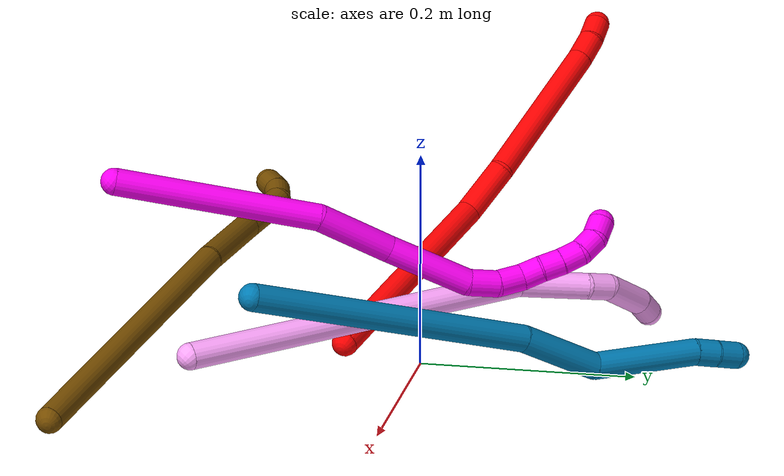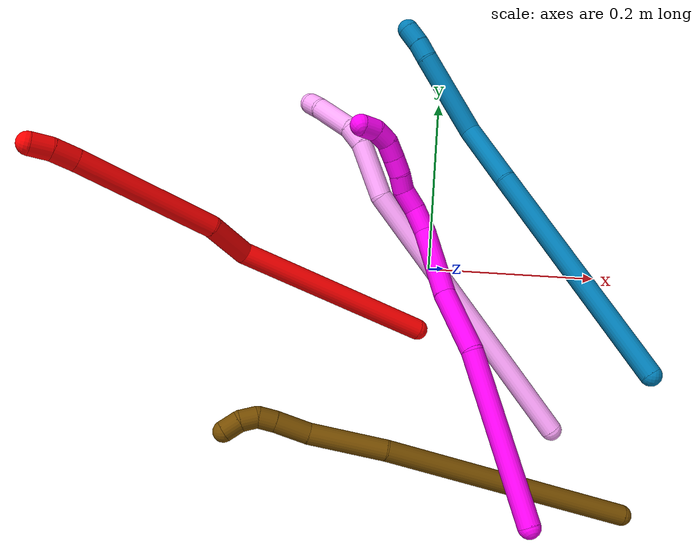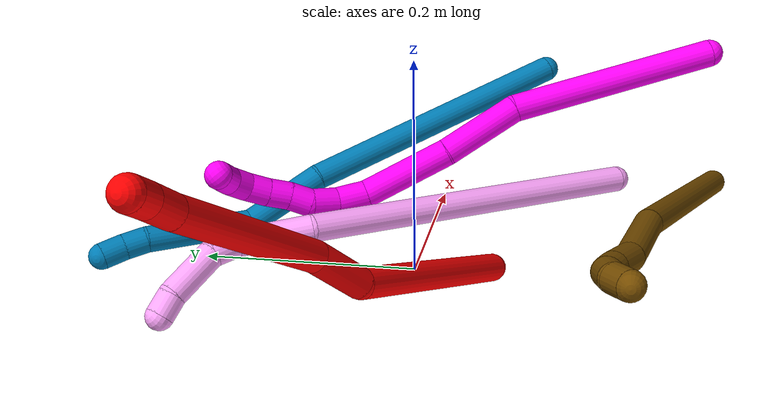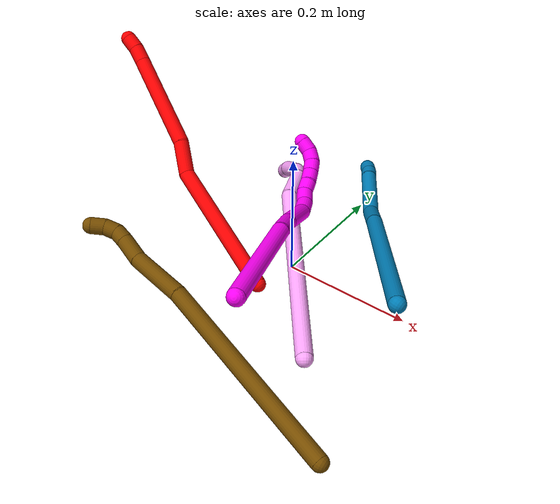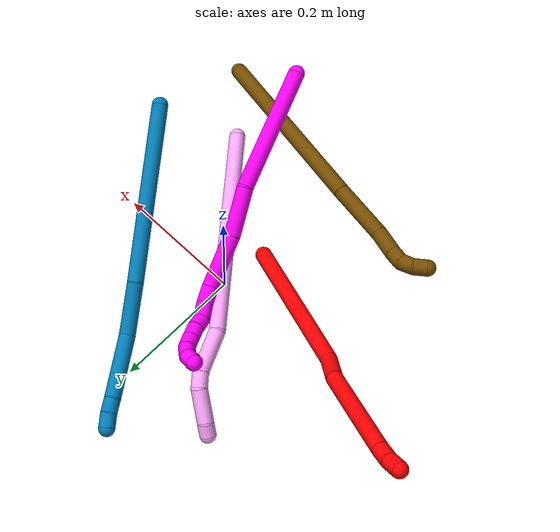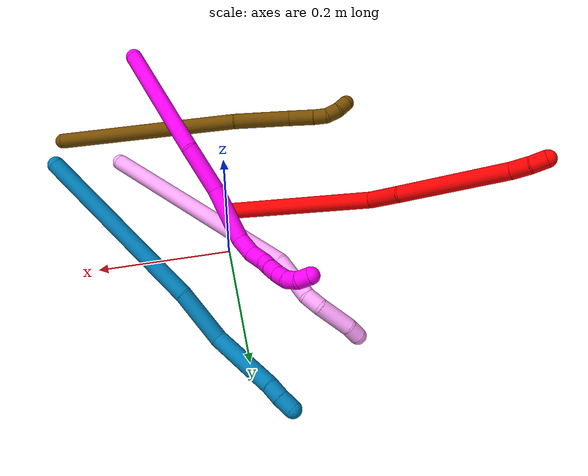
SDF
<sdf version="1.7">
 <world name="default">
  <model name="2">
   <static>0</static>
   <link name="2">
    <collision name="collision-cylinder-e_1_1_4">
     <pose>-0.018141 -0.002774 0.114519 0.024216 -0.157057 -0.001906</pose>
     <geometry><cylinder><radius>0.0125</radius><length>0.23196</length></cylinder></geometry>
     <surface>
      <friction><ode><mu>1.16</mu><mu2>1.16</mu2><slip1>0</slip1><slip2>0</slip2></ode></friction>
      <contact><ode><kp>1e+06</kp><kd>1</kd><max_vel>0</max_vel><min_depth>0.001</min_depth></ode></contact>
     </surface>
    </collision>
    <visual name="visual-cylinder-e_1_1_4">
     <pose>-0.018141 -0.002774 0.114519 0.024216 -0.157057 -0.001906</pose>
     <geometry><cylinder><radius>0.0125</radius><length>0.23196</length></cylinder></geometry>
     <material><ambient>1 0 0 1</ambient></material>
    </visual>
    <collision name="collision-cylinder-e_2_4_5">
     <pose>-0.04564 0.004698 0.252582 -0.410443 -0.349523 0.073471</pose>
     <geometry><cylinder><radius>0.0125</radius><length>0.054657</length></cylinder></geometry>
     <surface>
      <friction><ode><mu>1.16</mu><mu2>1.16</mu2><slip1>0</slip1><slip2>0</slip2></ode></friction>
      <contact><ode><kp>1e+06</kp><kd>1</kd><max_vel>0</max_vel><min_depth>0.001</min_depth></ode></contact>
     </surface>
    </collision>
    <visual name="visual-cylinder-e_2_4_5">
     <pose>-0.04564 0.004698 0.252582 -0.410443 -0.349523 0.073471</pose>
     <geometry><cylinder><radius>0.0125</radius><length>0.054657</length></cylinder></geometry>
     <material><ambient>1 0 0 1</ambient></material>
    </visual>
    <collision name="collision-cylinder-e_3_5_6">
     <pose>-0.069323 0.030337 0.355141 -0.192414 -0.176091 0.017037</pose>
     <geometry><cylinder><radius>0.0125</radius><length>0.16353</length></cylinder></geometry>
     <surface>
      <friction><ode><mu>1.16</mu><mu2>1.16</mu2><slip1>0</slip1><slip2>0</slip2></ode></friction>
      <contact><ode><kp>1e+06</kp><kd>1</kd><max_vel>0</max_vel><min_depth>0.001</min_depth></ode></contact>
     </surface>
    </collision>
    <visual name="visual-cylinder-e_3_5_6">
     <pose>-0.069323 0.030337 0.355141 -0.192414 -0.176091 0.017037</pose>
     <geometry><cylinder><radius>0.0125</radius><length>0.16353</length></cylinder></geometry>
     <material><ambient>1 0 0 1</ambient></material>
    </visual>
    <collision name="collision-cylinder-e_4_6_7">
     <pose>-0.085354 0.049131 0.447128 -0.256303 -0.126675 0.016345</pose>
     <geometry><cylinder><radius>0.0125</radius><length>0.027038</length></cylinder></geometry>
     <surface>
      <friction><ode><mu>1.16</mu><mu2>1.16</mu2><slip1>0</slip1><slip2>0</slip2></ode></friction>
      <contact><ode><kp>1e+06</kp><kd>1</kd><max_vel>0</max_vel><min_depth>0.001</min_depth></ode></contact>
     </surface>
    </collision>
    <visual name="visual-cylinder-e_4_6_7">
     <pose>-0.085354 0.049131 0.447128 -0.256303 -0.126675 0.016345</pose>
     <geometry><cylinder><radius>0.0125</radius><length>0.027038</length></cylinder></geometry>
     <material><ambient>1 0 0 1</ambient></material>
    </visual>
    <collision name="collision-cylinder-e_5_7_2">
     <pose>-0.086562 0.054585 0.47131 -0.181308 0.043835 -0.003985</pose>
     <geometry><cylinder><radius>0.0125</radius><length>0.022815</length></cylinder></geometry>
     <surface>
      <friction><ode><mu>1.16</mu><mu2>1.16</mu2><slip1>0</slip1><slip2>0</slip2></ode></friction>
      <contact><ode><kp>1e+06</kp><kd>1</kd><max_vel>0</max_vel><min_depth>0.001</min_depth></ode></contact>
     </surface>
    </collision>
    <visual name="visual-cylinder-e_5_7_2">
     <pose>-0.086562 0.054585 0.47131 -0.181308 0.043835 -0.003985</pose>
     <geometry><cylinder><radius>0.0125</radius><length>0.022815</length></cylinder></geometry>
     <material><ambient>1 0 0 1</ambient></material>
    </visual>
    <collision name="collision-sphere-2">
     <pose>-0.086062 0.05664 0.48252 0 -0 0</pose>
     <geometry><sphere><radius>0.0125</radius></sphere></geometry>
     <surface>
      <friction><ode><mu>1.16</mu><mu2>1.16</mu2><slip1>0</slip1><slip2>0</slip2></ode></friction>
      <contact><ode><kp>1e+06</kp><kd>1</kd><max_vel>0</max_vel><min_depth>0.001</min_depth></ode></contact>
     </surface>
    </collision>
    <visual name="visual-sphere-2">
     <pose>-0.086062 0.05664 0.48252 0 -0 0</pose>
     <geometry><sphere><radius>0.0125</radius></sphere></geometry>
     <material><ambient>1 0 0 1</ambient></material>
    </visual>
    <collision name="collision-sphere-7">
     <pose>-0.087062 0.05253 0.4601 0 -0 0</pose>
     <geometry><sphere><radius>0.0125</radius></sphere></geometry>
     <surface>
      <friction><ode><mu>1.16</mu><mu2>1.16</mu2><slip1>0</slip1><slip2>0</slip2></ode></friction>
      <contact><ode><kp>1e+06</kp><kd>1</kd><max_vel>0</max_vel><min_depth>0.001</min_depth></ode></contact>
     </surface>
    </collision>
    <visual name="visual-sphere-7">
     <pose>-0.087062 0.05253 0.4601 0 -0 0</pose>
     <geometry><sphere><radius>0.0125</radius></sphere></geometry>
     <material><ambient>1 0 0 1</ambient></material>
    </visual>
    <collision name="collision-sphere-6">
     <pose>-0.083646 0.045731 0.434156 0 -0 0</pose>
     <geometry><sphere><radius>0.0125</radius></sphere></geometry>
     <surface>
      <friction><ode><mu>1.16</mu><mu2>1.16</mu2><slip1>0</slip1><slip2>0</slip2></ode></friction>
      <contact><ode><kp>1e+06</kp><kd>1</kd><max_vel>0</max_vel><min_depth>0.001</min_depth></ode></contact>
     </surface>
    </collision>
    <visual name="visual-sphere-6">
     <pose>-0.083646 0.045731 0.434156 0 -0 0</pose>
     <geometry><sphere><radius>0.0125</radius></sphere></geometry>
     <material><ambient>1 0 0 1</ambient></material>
    </visual>
    <collision name="collision-sphere-5">
     <pose>-0.054999 0.014943 0.276126 0 -0 0</pose>
     <geometry><sphere><radius>0.0125</radius></sphere></geometry>
     <surface>
      <friction><ode><mu>1.16</mu><mu2>1.16</mu2><slip1>0</slip1><slip2>0</slip2></ode></friction>
      <contact><ode><kp>1e+06</kp><kd>1</kd><max_vel>0</max_vel><min_depth>0.001</min_depth></ode></contact>
     </surface>
    </collision>
    <visual name="visual-sphere-5">
     <pose>-0.054999 0.014943 0.276126 0 -0 0</pose>
     <geometry><sphere><radius>0.0125</radius></sphere></geometry>
     <material><ambient>1 0 0 1</ambient></material>
    </visual>
    <collision name="collision-sphere-1">
     <geometry><sphere><radius>0.0125</radius></sphere></geometry>
     <surface>
      <friction><ode><mu>1.16</mu><mu2>1.16</mu2><slip1>0</slip1><slip2>0</slip2></ode></friction>
      <contact><ode><kp>1e+06</kp><kd>1</kd><max_vel>0</max_vel><min_depth>0.001</min_depth></ode></contact>
     </surface>
    </collision>
    <visual name="visual-sphere-1">
     <geometry><sphere><radius>0.0125</radius></sphere></geometry>
     <material><ambient>1 0 0 1</ambient></material>
    </visual>
    <collision name="collision-sphere-4">
     <pose>-0.036281 -0.005547 0.229038 0 -0 0</pose>
     <geometry><sphere><radius>0.0125</radius></sphere></geometry>
     <surface>
      <friction><ode><mu>1.16</mu><mu2>1.16</mu2><slip1>0</slip1><slip2>0</slip2></ode></friction>
      <contact><ode><kp>1e+06</kp><kd>1</kd><max_vel>0</max_vel><min_depth>0.001</min_depth></ode></contact>
     </surface>
    </collision>
    <visual name="visual-sphere-4">
     <pose>-0.036281 -0.005547 0.229038 0 -0 0</pose>
     <geometry><sphere><radius>0.0125</radius></sphere></geometry>
     <material><ambient>1 0 0 1</ambient></material>
    </visual>
    <inertial>
     <pose>-0.044643 0.014296 0.242575 0 -0 0</pose>
     <mass>0.5</mass>
     <inertia>
      <ixx>0.001419</ixx>
      <ixy>0</ixy>
      <ixz>0</ixz>
      <iyy>0.001442</iyy>
      <iyz>0</iyz>
      <izz>0.000221</izz>
     </inertia>
    </inertial>
   </link>
   <pose>-0.010815 -0.073451 0.011546 1.2241 -0.027903 -1.76151</pose>
  </model>
  <model name="4">
   <static>0</static>
   <link name="4">
    <collision name="collision-cylinder-e_1_1_4">
     <pose>-0.051968 0.084675 0.137216 -0.55289 -0.311793 0.089123</pose>
     <geometry><cylinder><radius>0.0125</radius><length>0.338815</length></cylinder></geometry>
     <surface>
      <friction><ode><mu>1.16</mu><mu2>1.16</mu2><slip1>0</slip1><slip2>0</slip2></ode></friction>
      <contact><ode><kp>1e+06</kp><kd>1</kd><max_vel>0</max_vel><min_depth>0.001</min_depth></ode></contact>
     </surface>
    </collision>
    <visual name="visual-cylinder-e_1_1_4">
     <pose>-0.051968 0.084675 0.137216 -0.55289 -0.311793 0.089123</pose>
     <geometry><cylinder><radius>0.0125</radius><length>0.338815</length></cylinder></geometry>
     <material><ambient>1 0.65098 0.996078 1</ambient></material>
    </visual>
    <collision name="collision-cylinder-e_2_4_5">
     <pose>-0.107349 0.193216 0.297172 -0.809585 -0.103134 0.04422</pose>
     <geometry><cylinder><radius>0.0125</radius><length>0.066282</length></cylinder></geometry>
     <surface>
      <friction><ode><mu>1.16</mu><mu2>1.16</mu2><slip1>0</slip1><slip2>0</slip2></ode></friction>
      <contact><ode><kp>1e+06</kp><kd>1</kd><max_vel>0</max_vel><min_depth>0.001</min_depth></ode></contact>
     </surface>
    </collision>
    <visual name="visual-cylinder-e_2_4_5">
     <pose>-0.107349 0.193216 0.297172 -0.809585 -0.103134 0.04422</pose>
     <geometry><cylinder><radius>0.0125</radius><length>0.066282</length></cylinder></geometry>
     <material><ambient>1 0.65098 0.996078 1</ambient></material>
    </visual>
    <collision name="collision-cylinder-e_3_5_6">
     <pose>-0.115547 0.224957 0.327732 -0.7888 -0.407164 0.171424</pose>
     <geometry><cylinder><radius>0.0125</radius><length>0.024173</length></cylinder></geometry>
     <surface>
      <friction><ode><mu>1.16</mu><mu2>1.16</mu2><slip1>0</slip1><slip2>0</slip2></ode></friction>
      <contact><ode><kp>1e+06</kp><kd>1</kd><max_vel>0</max_vel><min_depth>0.001</min_depth></ode></contact>
     </surface>
    </collision>
    <visual name="visual-cylinder-e_3_5_6">
     <pose>-0.115547 0.224957 0.327732 -0.7888 -0.407164 0.171424</pose>
     <geometry><cylinder><radius>0.0125</radius><length>0.024173</length></cylinder></geometry>
     <material><ambient>1 0.65098 0.996078 1</ambient></material>
    </visual>
    <collision name="collision-cylinder-e_4_6_7">
     <pose>-0.137091 0.249468 0.344217 -1.09067 -0.729157 0.455067</pose>
     <geometry><cylinder><radius>0.0125</radius><length>0.050304</length></cylinder></geometry>
     <surface>
      <friction><ode><mu>1.16</mu><mu2>1.16</mu2><slip1>0</slip1><slip2>0</slip2></ode></friction>
      <contact><ode><kp>1e+06</kp><kd>1</kd><max_vel>0</max_vel><min_depth>0.001</min_depth></ode></contact>
     </surface>
    </collision>
    <visual name="visual-cylinder-e_4_6_7">
     <pose>-0.137091 0.249468 0.344217 -1.09067 -0.729157 0.455067</pose>
     <geometry><cylinder><radius>0.0125</radius><length>0.050304</length></cylinder></geometry>
     <material><ambient>1 0.65098 0.996078 1</ambient></material>
    </visual>
    <collision name="collision-cylinder-e_5_7_2">
     <pose>-0.160689 0.27364 0.353725 -1.45922 -0.733976 0.662174</pose>
     <geometry><cylinder><radius>0.0125</radius><length>0.020426</length></cylinder></geometry>
     <surface>
      <friction><ode><mu>1.16</mu><mu2>1.16</mu2><slip1>0</slip1><slip2>0</slip2></ode></friction>
      <contact><ode><kp>1e+06</kp><kd>1</kd><max_vel>0</max_vel><min_depth>0.001</min_depth></ode></contact>
     </surface>
    </collision>
    <visual name="visual-cylinder-e_5_7_2">
     <pose>-0.160689 0.27364 0.353725 -1.45922 -0.733976 0.662174</pose>
     <geometry><cylinder><radius>0.0125</radius><length>0.020426</length></cylinder></geometry>
     <material><ambient>1 0.65098 0.996078 1</ambient></material>
    </visual>
    <collision name="collision-sphere-2">
     <pose>-0.16753 0.281176 0.354569 0 -0 0</pose>
     <geometry><sphere><radius>0.0125</radius></sphere></geometry>
     <surface>
      <friction><ode><mu>1.16</mu><mu2>1.16</mu2><slip1>0</slip1><slip2>0</slip2></ode></friction>
      <contact><ode><kp>1e+06</kp><kd>1</kd><max_vel>0</max_vel><min_depth>0.001</min_depth></ode></contact>
     </surface>
    </collision>
    <visual name="visual-sphere-2">
     <pose>-0.16753 0.281176 0.354569 0 -0 0</pose>
     <geometry><sphere><radius>0.0125</radius></sphere></geometry>
     <material><ambient>1 0.65098 0.996078 1</ambient></material>
    </visual>
    <collision name="collision-sphere-7">
     <pose>-0.153848 0.266104 0.35288 0 -0 0</pose>
     <geometry><sphere><radius>0.0125</radius></sphere></geometry>
     <surface>
      <friction><ode><mu>1.16</mu><mu2>1.16</mu2><slip1>0</slip1><slip2>0</slip2></ode></friction>
      <contact><ode><kp>1e+06</kp><kd>1</kd><max_vel>0</max_vel><min_depth>0.001</min_depth></ode></contact>
     </surface>
    </collision>
    <visual name="visual-sphere-7">
     <pose>-0.153848 0.266104 0.35288 0 -0 0</pose>
     <geometry><sphere><radius>0.0125</radius></sphere></geometry>
     <material><ambient>1 0.65098 0.996078 1</ambient></material>
    </visual>
    <collision name="collision-sphere-6">
     <pose>-0.120333 0.232832 0.335553 0 -0 0</pose>
     <geometry><sphere><radius>0.0125</radius></sphere></geometry>
     <surface>
      <friction><ode><mu>1.16</mu><mu2>1.16</mu2><slip1>0</slip1><slip2>0</slip2></ode></friction>
      <contact><ode><kp>1e+06</kp><kd>1</kd><max_vel>0</max_vel><min_depth>0.001</min_depth></ode></contact>
     </surface>
    </collision>
    <visual name="visual-sphere-6">
     <pose>-0.120333 0.232832 0.335553 0 -0 0</pose>
     <geometry><sphere><radius>0.0125</radius></sphere></geometry>
     <material><ambient>1 0.65098 0.996078 1</ambient></material>
    </visual>
    <collision name="collision-sphere-5">
     <pose>-0.110761 0.217083 0.319911 0 -0 0</pose>
     <geometry><sphere><radius>0.0125</radius></sphere></geometry>
     <surface>
      <friction><ode><mu>1.16</mu><mu2>1.16</mu2><slip1>0</slip1><slip2>0</slip2></ode></friction>
      <contact><ode><kp>1e+06</kp><kd>1</kd><max_vel>0</max_vel><min_depth>0.001</min_depth></ode></contact>
     </surface>
    </collision>
    <visual name="visual-sphere-5">
     <pose>-0.110761 0.217083 0.319911 0 -0 0</pose>
     <geometry><sphere><radius>0.0125</radius></sphere></geometry>
     <material><ambient>1 0.65098 0.996078 1</ambient></material>
    </visual>
    <collision name="collision-sphere-1">
     <geometry><sphere><radius>0.0125</radius></sphere></geometry>
     <surface>
      <friction><ode><mu>1.16</mu><mu2>1.16</mu2><slip1>0</slip1><slip2>0</slip2></ode></friction>
      <contact><ode><kp>1e+06</kp><kd>1</kd><max_vel>0</max_vel><min_depth>0.001</min_depth></ode></contact>
     </surface>
    </collision>
    <visual name="visual-sphere-1">
     <geometry><sphere><radius>0.0125</radius></sphere></geometry>
     <material><ambient>1 0.65098 0.996078 1</ambient></material>
    </visual>
    <collision name="collision-sphere-4">
     <pose>-0.103937 0.16935 0.274433 0 -0 0</pose>
     <geometry><sphere><radius>0.0125</radius></sphere></geometry>
     <surface>
      <friction><ode><mu>1.16</mu><mu2>1.16</mu2><slip1>0</slip1><slip2>0</slip2></ode></friction>
      <contact><ode><kp>1e+06</kp><kd>1</kd><max_vel>0</max_vel><min_depth>0.001</min_depth></ode></contact>
     </surface>
    </collision>
    <visual name="visual-sphere-4">
     <pose>-0.103937 0.16935 0.274433 0 -0 0</pose>
     <geometry><sphere><radius>0.0125</radius></sphere></geometry>
     <material><ambient>1 0.65098 0.996078 1</ambient></material>
    </visual>
    <inertial>
     <pose>-0.075389 0.130145 0.197302 0 -0 0</pose>
     <mass>0.5</mass>
     <inertia>
      <ixx>0.003392</ixx>
      <ixy>0</ixy>
      <ixz>0</ixz>
      <iyy>0.003139</iyy>
      <iyz>0</iyz>
      <izz>-0.000618</izz>
     </inertia>
    </inertial>
   </link>
   <pose>0.150867 -0.180179 0.045322 -0.835767 -0.36922 0.335295</pose>
  </model>
  <model name="9">
   <static>0</static>
   <link name="9">
    <collision name="collision-cylinder-e_1_1_4">
     <pose>-0.049305 0.102126 -0.07738 -2.2192 -0.367338 0.715461</pose>
     <geometry><cylinder><radius>0.0125</radius><length>0.274579</length></cylinder></geometry>
     <surface>
      <friction><ode><mu>1.16</mu><mu2>1.16</mu2><slip1>0</slip1><slip2>0</slip2></ode></friction>
      <contact><ode><kp>1e+06</kp><kd>1</kd><max_vel>0</max_vel><min_depth>0.001</min_depth></ode></contact>
     </surface>
    </collision>
    <visual name="visual-cylinder-e_1_1_4">
     <pose>-0.049305 0.102126 -0.07738 -2.2192 -0.367338 0.715461</pose>
     <geometry><cylinder><radius>0.0125</radius><length>0.274579</length></cylinder></geometry>
     <material><ambient>0 0.490196 0.709804 1</ambient></material>
    </visual>
    <collision name="collision-cylinder-e_2_4_5">
     <pose>-0.108177 0.238177 -0.173205 -2.06879 -0.242853 0.404864</pose>
     <geometry><cylinder><radius>0.0125</radius><length>0.079566</length></cylinder></geometry>
     <surface>
      <friction><ode><mu>1.16</mu><mu2>1.16</mu2><slip1>0</slip1><slip2>0</slip2></ode></friction>
      <contact><ode><kp>1e+06</kp><kd>1</kd><max_vel>0</max_vel><min_depth>0.001</min_depth></ode></contact>
     </surface>
    </collision>
    <visual name="visual-cylinder-e_2_4_5">
     <pose>-0.108177 0.238177 -0.173205 -2.06879 -0.242853 0.404864</pose>
     <geometry><cylinder><radius>0.0125</radius><length>0.079566</length></cylinder></geometry>
     <material><ambient>0 0.490196 0.709804 1</ambient></material>
    </visual>
    <collision name="collision-cylinder-e_3_5_6">
     <pose>-0.147087 0.300725 -0.221887 -2.38362 -0.613931 1.34456</pose>
     <geometry><cylinder><radius>0.0125</radius><length>0.101873</length></cylinder></geometry>
     <surface>
      <friction><ode><mu>1.16</mu><mu2>1.16</mu2><slip1>0</slip1><slip2>0</slip2></ode></friction>
      <contact><ode><kp>1e+06</kp><kd>1</kd><max_vel>0</max_vel><min_depth>0.001</min_depth></ode></contact>
     </surface>
    </collision>
    <visual name="visual-cylinder-e_3_5_6">
     <pose>-0.147087 0.300725 -0.221887 -2.38362 -0.613931 1.34456</pose>
     <geometry><cylinder><radius>0.0125</radius><length>0.101873</length></cylinder></geometry>
     <material><ambient>0 0.490196 0.709804 1</ambient></material>
    </visual>
    <collision name="collision-cylinder-e_4_6_7">
     <pose>-0.181579 0.337027 -0.257586 -2.18898 -0.499949 0.919063</pose>
     <geometry><cylinder><radius>0.0125</radius><length>0.021477</length></cylinder></geometry>
     <surface>
      <friction><ode><mu>1.16</mu><mu2>1.16</mu2><slip1>0</slip1><slip2>0</slip2></ode></friction>
      <contact><ode><kp>1e+06</kp><kd>1</kd><max_vel>0</max_vel><min_depth>0.001</min_depth></ode></contact>
     </surface>
    </collision>
    <visual name="visual-cylinder-e_4_6_7">
     <pose>-0.181579 0.337027 -0.257586 -2.18898 -0.499949 0.919063</pose>
     <geometry><cylinder><radius>0.0125</radius><length>0.021477</length></cylinder></geometry>
     <material><ambient>0 0.490196 0.709804 1</ambient></material>
    </visual>
    <collision name="collision-cylinder-e_5_7_2">
     <pose>-0.191096 0.352643 -0.269722 -2.27007 -0.398809 0.818993</pose>
     <geometry><cylinder><radius>0.0125</radius><length>0.022506</length></cylinder></geometry>
     <surface>
      <friction><ode><mu>1.16</mu><mu2>1.16</mu2><slip1>0</slip1><slip2>0</slip2></ode></friction>
      <contact><ode><kp>1e+06</kp><kd>1</kd><max_vel>0</max_vel><min_depth>0.001</min_depth></ode></contact>
     </surface>
    </collision>
    <visual name="visual-cylinder-e_5_7_2">
     <pose>-0.191096 0.352643 -0.269722 -2.27007 -0.398809 0.818993</pose>
     <geometry><cylinder><radius>0.0125</radius><length>0.022506</length></cylinder></geometry>
     <material><ambient>0 0.490196 0.709804 1</ambient></material>
    </visual>
    <collision name="collision-sphere-2">
     <pose>-0.195466 0.360579 -0.276397 0 -0 0</pose>
     <geometry><sphere><radius>0.0125</radius></sphere></geometry>
     <surface>
      <friction><ode><mu>1.16</mu><mu2>1.16</mu2><slip1>0</slip1><slip2>0</slip2></ode></friction>
      <contact><ode><kp>1e+06</kp><kd>1</kd><max_vel>0</max_vel><min_depth>0.001</min_depth></ode></contact>
     </surface>
    </collision>
    <visual name="visual-sphere-2">
     <pose>-0.195466 0.360579 -0.276397 0 -0 0</pose>
     <geometry><sphere><radius>0.0125</radius></sphere></geometry>
     <material><ambient>0 0.490196 0.709804 1</ambient></material>
    </visual>
    <collision name="collision-sphere-7">
     <pose>-0.186727 0.344707 -0.263048 0 -0 0</pose>
     <geometry><sphere><radius>0.0125</radius></sphere></geometry>
     <surface>
      <friction><ode><mu>1.16</mu><mu2>1.16</mu2><slip1>0</slip1><slip2>0</slip2></ode></friction>
      <contact><ode><kp>1e+06</kp><kd>1</kd><max_vel>0</max_vel><min_depth>0.001</min_depth></ode></contact>
     </surface>
    </collision>
    <visual name="visual-sphere-7">
     <pose>-0.186727 0.344707 -0.263048 0 -0 0</pose>
     <geometry><sphere><radius>0.0125</radius></sphere></geometry>
     <material><ambient>0 0.490196 0.709804 1</ambient></material>
    </visual>
    <collision name="collision-sphere-6">
     <pose>-0.176431 0.329347 -0.252124 0 -0 0</pose>
     <geometry><sphere><radius>0.0125</radius></sphere></geometry>
     <surface>
      <friction><ode><mu>1.16</mu><mu2>1.16</mu2><slip1>0</slip1><slip2>0</slip2></ode></friction>
      <contact><ode><kp>1e+06</kp><kd>1</kd><max_vel>0</max_vel><min_depth>0.001</min_depth></ode></contact>
     </surface>
    </collision>
    <visual name="visual-sphere-6">
     <pose>-0.176431 0.329347 -0.252124 0 -0 0</pose>
     <geometry><sphere><radius>0.0125</radius></sphere></geometry>
     <material><ambient>0 0.490196 0.709804 1</ambient></material>
    </visual>
    <collision name="collision-sphere-5">
     <pose>-0.117744 0.272103 -0.191651 0 -0 0</pose>
     <geometry><sphere><radius>0.0125</radius></sphere></geometry>
     <surface>
      <friction><ode><mu>1.16</mu><mu2>1.16</mu2><slip1>0</slip1><slip2>0</slip2></ode></friction>
      <contact><ode><kp>1e+06</kp><kd>1</kd><max_vel>0</max_vel><min_depth>0.001</min_depth></ode></contact>
     </surface>
    </collision>
    <visual name="visual-sphere-5">
     <pose>-0.117744 0.272103 -0.191651 0 -0 0</pose>
     <geometry><sphere><radius>0.0125</radius></sphere></geometry>
     <material><ambient>0 0.490196 0.709804 1</ambient></material>
    </visual>
    <collision name="collision-sphere-1">
     <geometry><sphere><radius>0.0125</radius></sphere></geometry>
     <surface>
      <friction><ode><mu>1.16</mu><mu2>1.16</mu2><slip1>0</slip1><slip2>0</slip2></ode></friction>
      <contact><ode><kp>1e+06</kp><kd>1</kd><max_vel>0</max_vel><min_depth>0.001</min_depth></ode></contact>
     </surface>
    </collision>
    <visual name="visual-sphere-1">
     <geometry><sphere><radius>0.0125</radius></sphere></geometry>
     <material><ambient>0 0.490196 0.709804 1</ambient></material>
    </visual>
    <collision name="collision-sphere-4">
     <pose>-0.09861 0.204252 -0.15476 0 -0 0</pose>
     <geometry><sphere><radius>0.0125</radius></sphere></geometry>
     <surface>
      <friction><ode><mu>1.16</mu><mu2>1.16</mu2><slip1>0</slip1><slip2>0</slip2></ode></friction>
      <contact><ode><kp>1e+06</kp><kd>1</kd><max_vel>0</max_vel><min_depth>0.001</min_depth></ode></contact>
     </surface>
    </collision>
    <visual name="visual-sphere-4">
     <pose>-0.09861 0.204252 -0.15476 0 -0 0</pose>
     <geometry><sphere><radius>0.0125</radius></sphere></geometry>
     <material><ambient>0 0.490196 0.709804 1</ambient></material>
    </visual>
    <inertial>
     <pose>-0.09066 0.185606 -0.13847 0 -0 0</pose>
     <mass>0.5</mass>
     <inertia>
      <ixx>0.002422</ixx>
      <ixy>0</ixy>
      <ixz>0</ixz>
      <iyy>0.000723</iyy>
      <iyz>0</iyz>
      <izz>-0.000717</izz>
     </inertia>
    </inertial>
   </link>
   <pose>0.237513 -0.101433 0.133157 -1.77553 0.642131 -1.74532</pose>
  </model>
  <model name="10">
   <static>0</static>
   <link name="10">
    <collision name="collision-cylinder-e_1_1_4">
     <pose>-0.021033 0.032492 0.086936 -0.357675 -0.222857 0.040448</pose>
     <geometry><cylinder><radius>0.0125</radius><length>0.190326</length></cylinder></geometry>
     <surface>
      <friction><ode><mu>1.16</mu><mu2>1.16</mu2><slip1>0</slip1><slip2>0</slip2></ode></friction>
      <contact><ode><kp>1e+06</kp><kd>1</kd><max_vel>0</max_vel><min_depth>0.001</min_depth></ode></contact>
     </surface>
    </collision>
    <visual name="visual-cylinder-e_1_1_4">
     <pose>-0.021033 0.032492 0.086936 -0.357675 -0.222857 0.040448</pose>
     <geometry><cylinder><radius>0.0125</radius><length>0.190326</length></cylinder></geometry>
     <material><ambient>1 0 0.964706 1</ambient></material>
    </visual>
    <collision name="collision-cylinder-e_2_4_5">
     <pose>-0.042163 0.070911 0.210378 -0.160936 -0.002638 0.000213</pose>
     <geometry><cylinder><radius>0.0125</radius><length>0.073968</length></cylinder></geometry>
     <surface>
      <friction><ode><mu>1.16</mu><mu2>1.16</mu2><slip1>0</slip1><slip2>0</slip2></ode></friction>
      <contact><ode><kp>1e+06</kp><kd>1</kd><max_vel>0</max_vel><min_depth>0.001</min_depth></ode></contact>
     </surface>
    </collision>
    <visual name="visual-cylinder-e_2_4_5">
     <pose>-0.042163 0.070911 0.210378 -0.160936 -0.002638 0.000213</pose>
     <geometry><cylinder><radius>0.0125</radius><length>0.073968</length></cylinder></geometry>
     <material><ambient>1 0 0.964706 1</ambient></material>
    </visual>
    <collision name="collision-cylinder-e_3_5_6">
     <pose>-0.047991 0.082685 0.287027 -0.144654 -0.140326 0.010184</pose>
     <geometry><cylinder><radius>0.0125</radius><length>0.081939</length></cylinder></geometry>
     <surface>
      <friction><ode><mu>1.16</mu><mu2>1.16</mu2><slip1>0</slip1><slip2>0</slip2></ode></friction>
      <contact><ode><kp>1e+06</kp><kd>1</kd><max_vel>0</max_vel><min_depth>0.001</min_depth></ode></contact>
     </surface>
    </collision>
    <visual name="visual-cylinder-e_3_5_6">
     <pose>-0.047991 0.082685 0.287027 -0.144654 -0.140326 0.010184</pose>
     <geometry><cylinder><radius>0.0125</radius><length>0.081939</length></cylinder></geometry>
     <material><ambient>1 0 0.964706 1</ambient></material>
    </visual>
    <collision name="collision-cylinder-e_4_6_7">
     <pose>-0.05589 0.09516 0.339591 -0.490131 -0.152898 0.038309</pose>
     <geometry><cylinder><radius>0.0125</radius><length>0.028488</length></cylinder></geometry>
     <surface>
      <friction><ode><mu>1.16</mu><mu2>1.16</mu2><slip1>0</slip1><slip2>0</slip2></ode></friction>
      <contact><ode><kp>1e+06</kp><kd>1</kd><max_vel>0</max_vel><min_depth>0.001</min_depth></ode></contact>
     </surface>
    </collision>
    <visual name="visual-cylinder-e_4_6_7">
     <pose>-0.05589 0.09516 0.339591 -0.490131 -0.152898 0.038309</pose>
     <geometry><cylinder><radius>0.0125</radius><length>0.028488</length></cylinder></geometry>
     <material><ambient>1 0 0.964706 1</ambient></material>
    </visual>
    <collision name="collision-cylinder-e_5_7_8">
     <pose>-0.059462 0.110674 0.360889 -0.785927 -0.111196 0.046133</pose>
     <geometry><cylinder><radius>0.0125</radius><length>0.025278</length></cylinder></geometry>
     <surface>
      <friction><ode><mu>1.16</mu><mu2>1.16</mu2><slip1>0</slip1><slip2>0</slip2></ode></friction>
      <contact><ode><kp>1e+06</kp><kd>1</kd><max_vel>0</max_vel><min_depth>0.001</min_depth></ode></contact>
     </surface>
    </collision>
    <visual name="visual-cylinder-e_5_7_8">
     <pose>-0.059462 0.110674 0.360889 -0.785927 -0.111196 0.046133</pose>
     <geometry><cylinder><radius>0.0125</radius><length>0.025278</length></cylinder></geometry>
     <material><ambient>1 0 0.964706 1</ambient></material>
    </visual>
    <collision name="collision-cylinder-e_6_8_9">
     <pose>-0.065525 0.126786 0.374874 -0.955372 -0.484725 0.254577</pose>
     <geometry><cylinder><radius>0.0125</radius><length>0.02</length></cylinder></geometry>
     <surface>
      <friction><ode><mu>1.16</mu><mu2>1.16</mu2><slip1>0</slip1><slip2>0</slip2></ode></friction>
      <contact><ode><kp>1e+06</kp><kd>1</kd><max_vel>0</max_vel><min_depth>0.001</min_depth></ode></contact>
     </surface>
    </collision>
    <visual name="visual-cylinder-e_6_8_9">
     <pose>-0.065525 0.126786 0.374874 -0.955372 -0.484725 0.254577</pose>
     <geometry><cylinder><radius>0.0125</radius><length>0.02</length></cylinder></geometry>
     <material><ambient>1 0 0.964706 1</ambient></material>
    </visual>
    <collision name="collision-cylinder-e_7_9_10">
     <pose>-0.073459 0.141265 0.386036 -0.875423 -0.333664 0.15729</pose>
     <geometry><cylinder><radius>0.0125</radius><length>0.02</length></cylinder></geometry>
     <surface>
      <friction><ode><mu>1.16</mu><mu2>1.16</mu2><slip1>0</slip1><slip2>0</slip2></ode></friction>
      <contact><ode><kp>1e+06</kp><kd>1</kd><max_vel>0</max_vel><min_depth>0.001</min_depth></ode></contact>
     </surface>
    </collision>
    <visual name="visual-cylinder-e_7_9_10">
     <pose>-0.073459 0.141265 0.386036 -0.875423 -0.333664 0.15729</pose>
     <geometry><cylinder><radius>0.0125</radius><length>0.02</length></cylinder></geometry>
     <material><ambient>1 0 0.964706 1</ambient></material>
    </visual>
    <collision name="collision-cylinder-e_8_10_11">
     <pose>-0.079931 0.156465 0.397252 -0.994464 -0.325376 0.177692</pose>
     <geometry><cylinder><radius>0.0125</radius><length>0.02</length></cylinder></geometry>
     <surface>
      <friction><ode><mu>1.16</mu><mu2>1.16</mu2><slip1>0</slip1><slip2>0</slip2></ode></friction>
      <contact><ode><kp>1e+06</kp><kd>1</kd><max_vel>0</max_vel><min_depth>0.001</min_depth></ode></contact>
     </surface>
    </collision>
    <visual name="visual-cylinder-e_8_10_11">
     <pose>-0.079931 0.156465 0.397252 -0.994464 -0.325376 0.177692</pose>
     <geometry><cylinder><radius>0.0125</radius><length>0.02</length></cylinder></geometry>
     <material><ambient>1 0 0.964706 1</ambient></material>
    </visual>
    <collision name="collision-cylinder-e_9_11_12">
     <pose>-0.083316 0.173891 0.405589 -1.2479 -0.018868 0.013583</pose>
     <geometry><cylinder><radius>0.0125</radius><length>0.02</length></cylinder></geometry>
     <surface>
      <friction><ode><mu>1.16</mu><mu2>1.16</mu2><slip1>0</slip1><slip2>0</slip2></ode></friction>
      <contact><ode><kp>1e+06</kp><kd>1</kd><max_vel>0</max_vel><min_depth>0.001</min_depth></ode></contact>
     </surface>
    </collision>
    <visual name="visual-cylinder-e_9_11_12">
     <pose>-0.083316 0.173891 0.405589 -1.2479 -0.018868 0.013583</pose>
     <geometry><cylinder><radius>0.0125</radius><length>0.02</length></cylinder></geometry>
     <material><ambient>1 0 0.964706 1</ambient></material>
    </visual>
    <collision name="collision-cylinder-e_10_12_2">
     <pose>-0.080492 0.192892 0.409301 -1.51415 0.30608 -0.289455</pose>
     <geometry><cylinder><radius>0.0125</radius><length>0.02</length></cylinder></geometry>
     <surface>
      <friction><ode><mu>1.16</mu><mu2>1.16</mu2><slip1>0</slip1><slip2>0</slip2></ode></friction>
      <contact><ode><kp>1e+06</kp><kd>1</kd><max_vel>0</max_vel><min_depth>0.001</min_depth></ode></contact>
     </surface>
    </collision>
    <visual name="visual-cylinder-e_10_12_2">
     <pose>-0.080492 0.192892 0.409301 -1.51415 0.30608 -0.289455</pose>
     <geometry><cylinder><radius>0.0125</radius><length>0.02</length></cylinder></geometry>
     <material><ambient>1 0 0.964706 1</ambient></material>
    </visual>
    <collision name="collision-sphere-2">
     <pose>-0.077479 0.202412 0.409841 0 -0 0</pose>
     <geometry><sphere><radius>0.0125</radius></sphere></geometry>
     <surface>
      <friction><ode><mu>1.16</mu><mu2>1.16</mu2><slip1>0</slip1><slip2>0</slip2></ode></friction>
      <contact><ode><kp>1e+06</kp><kd>1</kd><max_vel>0</max_vel><min_depth>0.001</min_depth></ode></contact>
     </surface>
    </collision>
    <visual name="visual-sphere-2">
     <pose>-0.077479 0.202412 0.409841 0 -0 0</pose>
     <geometry><sphere><radius>0.0125</radius></sphere></geometry>
     <material><ambient>1 0 0.964706 1</ambient></material>
    </visual>
    <collision name="collision-sphere-12">
     <pose>-0.083505 0.183372 0.408761 0 -0 0</pose>
     <geometry><sphere><radius>0.0125</radius></sphere></geometry>
     <surface>
      <friction><ode><mu>1.16</mu><mu2>1.16</mu2><slip1>0</slip1><slip2>0</slip2></ode></friction>
      <contact><ode><kp>1e+06</kp><kd>1</kd><max_vel>0</max_vel><min_depth>0.001</min_depth></ode></contact>
     </surface>
    </collision>
    <visual name="visual-sphere-12">
     <pose>-0.083505 0.183372 0.408761 0 -0 0</pose>
     <geometry><sphere><radius>0.0125</radius></sphere></geometry>
     <material><ambient>1 0 0.964706 1</ambient></material>
    </visual>
    <collision name="collision-sphere-11">
     <pose>-0.083128 0.164409 0.402416 0 -0 0</pose>
     <geometry><sphere><radius>0.0125</radius></sphere></geometry>
     <surface>
      <friction><ode><mu>1.16</mu><mu2>1.16</mu2><slip1>0</slip1><slip2>0</slip2></ode></friction>
      <contact><ode><kp>1e+06</kp><kd>1</kd><max_vel>0</max_vel><min_depth>0.001</min_depth></ode></contact>
     </surface>
    </collision>
    <visual name="visual-sphere-11">
     <pose>-0.083128 0.164409 0.402416 0 -0 0</pose>
     <geometry><sphere><radius>0.0125</radius></sphere></geometry>
     <material><ambient>1 0 0.964706 1</ambient></material>
    </visual>
    <collision name="collision-sphere-10">
     <pose>-0.076734 0.14852 0.392089 0 -0 0</pose>
     <geometry><sphere><radius>0.0125</radius></sphere></geometry>
     <surface>
      <friction><ode><mu>1.16</mu><mu2>1.16</mu2><slip1>0</slip1><slip2>0</slip2></ode></friction>
      <contact><ode><kp>1e+06</kp><kd>1</kd><max_vel>0</max_vel><min_depth>0.001</min_depth></ode></contact>
     </surface>
    </collision>
    <visual name="visual-sphere-10">
     <pose>-0.076734 0.14852 0.392089 0 -0 0</pose>
     <geometry><sphere><radius>0.0125</radius></sphere></geometry>
     <material><ambient>1 0 0.964706 1</ambient></material>
    </visual>
    <collision name="collision-sphere-9">
     <pose>-0.070184 0.13401 0.379982 0 -0 0</pose>
     <geometry><sphere><radius>0.0125</radius></sphere></geometry>
     <surface>
      <friction><ode><mu>1.16</mu><mu2>1.16</mu2><slip1>0</slip1><slip2>0</slip2></ode></friction>
      <contact><ode><kp>1e+06</kp><kd>1</kd><max_vel>0</max_vel><min_depth>0.001</min_depth></ode></contact>
     </surface>
    </collision>
    <visual name="visual-sphere-9">
     <pose>-0.070184 0.13401 0.379982 0 -0 0</pose>
     <geometry><sphere><radius>0.0125</radius></sphere></geometry>
     <material><ambient>1 0 0.964706 1</ambient></material>
    </visual>
    <collision name="collision-sphere-4">
     <pose>-0.042065 0.064985 0.173872 0 -0 0</pose>
     <geometry><sphere><radius>0.0125</radius></sphere></geometry>
     <surface>
      <friction><ode><mu>1.16</mu><mu2>1.16</mu2><slip1>0</slip1><slip2>0</slip2></ode></friction>
      <contact><ode><kp>1e+06</kp><kd>1</kd><max_vel>0</max_vel><min_depth>0.001</min_depth></ode></contact>
     </surface>
    </collision>
    <visual name="visual-sphere-4">
     <pose>-0.042065 0.064985 0.173872 0 -0 0</pose>
     <geometry><sphere><radius>0.0125</radius></sphere></geometry>
     <material><ambient>1 0 0.964706 1</ambient></material>
    </visual>
    <collision name="collision-sphere-1">
     <geometry><sphere><radius>0.0125</radius></sphere></geometry>
     <surface>
      <friction><ode><mu>1.16</mu><mu2>1.16</mu2><slip1>0</slip1><slip2>0</slip2></ode></friction>
      <contact><ode><kp>1e+06</kp><kd>1</kd><max_vel>0</max_vel><min_depth>0.001</min_depth></ode></contact>
     </surface>
    </collision>
    <visual name="visual-sphere-1">
     <geometry><sphere><radius>0.0125</radius></sphere></geometry>
     <material><ambient>1 0 0.964706 1</ambient></material>
    </visual>
    <collision name="collision-sphere-8">
     <pose>-0.060865 0.119561 0.369766 0 -0 0</pose>
     <geometry><sphere><radius>0.0125</radius></sphere></geometry>
     <surface>
      <friction><ode><mu>1.16</mu><mu2>1.16</mu2><slip1>0</slip1><slip2>0</slip2></ode></friction>
      <contact><ode><kp>1e+06</kp><kd>1</kd><max_vel>0</max_vel><min_depth>0.001</min_depth></ode></contact>
     </surface>
    </collision>
    <visual name="visual-sphere-8">
     <pose>-0.060865 0.119561 0.369766 0 -0 0</pose>
     <geometry><sphere><radius>0.0125</radius></sphere></geometry>
     <material><ambient>1 0 0.964706 1</ambient></material>
    </visual>
    <collision name="collision-sphere-5">
     <pose>-0.04226 0.076838 0.246884 0 -0 0</pose>
     <geometry><sphere><radius>0.0125</radius></sphere></geometry>
     <surface>
      <friction><ode><mu>1.16</mu><mu2>1.16</mu2><slip1>0</slip1><slip2>0</slip2></ode></friction>
      <contact><ode><kp>1e+06</kp><kd>1</kd><max_vel>0</max_vel><min_depth>0.001</min_depth></ode></contact>
     </surface>
    </collision>
    <visual name="visual-sphere-5">
     <pose>-0.04226 0.076838 0.246884 0 -0 0</pose>
     <geometry><sphere><radius>0.0125</radius></sphere></geometry>
     <material><ambient>1 0 0.964706 1</ambient></material>
    </visual>
    <collision name="collision-sphere-6">
     <pose>-0.053721 0.088533 0.32717 0 -0 0</pose>
     <geometry><sphere><radius>0.0125</radius></sphere></geometry>
     <surface>
      <friction><ode><mu>1.16</mu><mu2>1.16</mu2><slip1>0</slip1><slip2>0</slip2></ode></friction>
      <contact><ode><kp>1e+06</kp><kd>1</kd><max_vel>0</max_vel><min_depth>0.001</min_depth></ode></contact>
     </surface>
    </collision>
    <visual name="visual-sphere-6">
     <pose>-0.053721 0.088533 0.32717 0 -0 0</pose>
     <geometry><sphere><radius>0.0125</radius></sphere></geometry>
     <material><ambient>1 0 0.964706 1</ambient></material>
    </visual>
    <collision name="collision-sphere-7">
     <pose>-0.05806 0.101787 0.352011 0 -0 0</pose>
     <geometry><sphere><radius>0.0125</radius></sphere></geometry>
     <surface>
      <friction><ode><mu>1.16</mu><mu2>1.16</mu2><slip1>0</slip1><slip2>0</slip2></ode></friction>
      <contact><ode><kp>1e+06</kp><kd>1</kd><max_vel>0</max_vel><min_depth>0.001</min_depth></ode></contact>
     </surface>
    </collision>
    <visual name="visual-sphere-7">
     <pose>-0.05806 0.101787 0.352011 0 -0 0</pose>
     <geometry><sphere><radius>0.0125</radius></sphere></geometry>
     <material><ambient>1 0 0.964706 1</ambient></material>
    </visual>
    <inertial>
     <pose>-0.043608 0.079078 0.227769 0 -0 0</pose>
     <mass>0.5</mass>
     <inertia>
      <ixx>0.000682</ixx>
      <ixy>0</ixy>
      <ixz>0</ixz>
      <iyy>0.000679</iyy>
      <iyz>0</iyz>
      <izz>-5.1e-05</izz>
     </inertia>
    </inertial>
   </link>
   <pose>0.104942 -0.259964 0.190265 2.26988 0.376608 -2.4486</pose>
  </model>
  <model name="12">
   <static>0</static>
   <link name="12">
    <collision name="collision-cylinder-e_1_1_4">
     <pose>-0.039537 0.02042 -0.146329 -3.00294 -0.261474 2.16985</pose>
     <geometry><cylinder><radius>0.0125</radius><length>0.305891</length></cylinder></geometry>
     <surface>
      <friction><ode><mu>1.16</mu><mu2>1.16</mu2><slip1>0</slip1><slip2>0</slip2></ode></friction>
      <contact><ode><kp>1e+06</kp><kd>1</kd><max_vel>0</max_vel><min_depth>0.001</min_depth></ode></contact>
     </surface>
    </collision>
    <visual name="visual-cylinder-e_1_1_4">
     <pose>-0.039537 0.02042 -0.146329 -3.00294 -0.261474 2.16985</pose>
     <geometry><cylinder><radius>0.0125</radius><length>0.305891</length></cylinder></geometry>
     <material><ambient>0.466667 0.301961 0 1</ambient></material>
    </visual>
    <collision name="collision-cylinder-e_2_4_5">
     <pose>-0.084369 0.05045 -0.336781 -2.92715 -0.116714 0.994578</pose>
     <geometry><cylinder><radius>0.0125</radius><length>0.090935</length></cylinder></geometry>
     <surface>
      <friction><ode><mu>1.16</mu><mu2>1.16</mu2><slip1>0</slip1><slip2>0</slip2></ode></friction>
      <contact><ode><kp>1e+06</kp><kd>1</kd><max_vel>0</max_vel><min_depth>0.001</min_depth></ode></contact>
     </surface>
    </collision>
    <visual name="visual-cylinder-e_2_4_5">
     <pose>-0.084369 0.05045 -0.336781 -2.92715 -0.116714 0.994578</pose>
     <geometry><cylinder><radius>0.0125</radius><length>0.090935</length></cylinder></geometry>
     <material><ambient>0.466667 0.301961 0 1</ambient></material>
    </visual>
    <collision name="collision-cylinder-e_3_5_6">
     <pose>-0.095876 0.063951 -0.399967 -2.94022 -0.30909 1.99095</pose>
     <geometry><cylinder><radius>0.0125</radius><length>0.040845</length></cylinder></geometry>
     <surface>
      <friction><ode><mu>1.16</mu><mu2>1.16</mu2><slip1>0</slip1><slip2>0</slip2></ode></friction>
      <contact><ode><kp>1e+06</kp><kd>1</kd><max_vel>0</max_vel><min_depth>0.001</min_depth></ode></contact>
     </surface>
    </collision>
    <visual name="visual-cylinder-e_3_5_6">
     <pose>-0.095876 0.063951 -0.399967 -2.94022 -0.30909 1.99095</pose>
     <geometry><cylinder><radius>0.0125</radius><length>0.040845</length></cylinder></geometry>
     <material><ambient>0.466667 0.301961 0 1</ambient></material>
    </visual>
    <collision name="collision-cylinder-e_4_6_7">
     <pose>-0.104538 0.069299 -0.428997 -2.99646 -0.238504 2.05092</pose>
     <geometry><cylinder><radius>0.0125</radius><length>0.020738</length></cylinder></geometry>
     <surface>
      <friction><ode><mu>1.16</mu><mu2>1.16</mu2><slip1>0</slip1><slip2>0</slip2></ode></friction>
      <contact><ode><kp>1e+06</kp><kd>1</kd><max_vel>0</max_vel><min_depth>0.001</min_depth></ode></contact>
     </surface>
    </collision>
    <visual name="visual-cylinder-e_4_6_7">
     <pose>-0.104538 0.069299 -0.428997 -2.99646 -0.238504 2.05092</pose>
     <geometry><cylinder><radius>0.0125</radius><length>0.020738</length></cylinder></geometry>
     <material><ambient>0.466667 0.301961 0 1</ambient></material>
    </visual>
    <collision name="collision-cylinder-e_5_7_8">
     <pose>-0.105496 0.069292 -0.448935 2.99568 0.147014 1.57837</pose>
     <geometry><cylinder><radius>0.0125</radius><length>0.02037</length></cylinder></geometry>
     <surface>
      <friction><ode><mu>1.16</mu><mu2>1.16</mu2><slip1>0</slip1><slip2>0</slip2></ode></friction>
      <contact><ode><kp>1e+06</kp><kd>1</kd><max_vel>0</max_vel><min_depth>0.001</min_depth></ode></contact>
     </surface>
    </collision>
    <visual name="visual-cylinder-e_5_7_8">
     <pose>-0.105496 0.069292 -0.448935 2.99568 0.147014 1.57837</pose>
     <geometry><cylinder><radius>0.0125</radius><length>0.02037</length></cylinder></geometry>
     <material><ambient>0.466667 0.301961 0 1</ambient></material>
    </visual>
    <collision name="collision-cylinder-e_6_8_2">
     <pose>-0.099185 0.064789 -0.467855 2.81445 0.471394 1.93739</pose>
     <geometry><cylinder><radius>0.0125</radius><length>0.021222</length></cylinder></geometry>
     <surface>
      <friction><ode><mu>1.16</mu><mu2>1.16</mu2><slip1>0</slip1><slip2>0</slip2></ode></friction>
      <contact><ode><kp>1e+06</kp><kd>1</kd><max_vel>0</max_vel><min_depth>0.001</min_depth></ode></contact>
     </surface>
    </collision>
    <visual name="visual-cylinder-e_6_8_2">
     <pose>-0.099185 0.064789 -0.467855 2.81445 0.471394 1.93739</pose>
     <geometry><cylinder><radius>0.0125</radius><length>0.021222</length></cylinder></geometry>
     <material><ambient>0.466667 0.301961 0 1</ambient></material>
    </visual>
    <collision name="collision-sphere-2">
     <pose>-0.094366 0.061751 -0.476808 0 -0 0</pose>
     <geometry><sphere><radius>0.0125</radius></sphere></geometry>
     <surface>
      <friction><ode><mu>1.16</mu><mu2>1.16</mu2><slip1>0</slip1><slip2>0</slip2></ode></friction>
      <contact><ode><kp>1e+06</kp><kd>1</kd><max_vel>0</max_vel><min_depth>0.001</min_depth></ode></contact>
     </surface>
    </collision>
    <visual name="visual-sphere-2">
     <pose>-0.094366 0.061751 -0.476808 0 -0 0</pose>
     <geometry><sphere><radius>0.0125</radius></sphere></geometry>
     <material><ambient>0.466667 0.301961 0 1</ambient></material>
    </visual>
    <collision name="collision-sphere-4">
     <pose>-0.079074 0.04084 -0.292658 0 -0 0</pose>
     <geometry><sphere><radius>0.0125</radius></sphere></geometry>
     <surface>
      <friction><ode><mu>1.16</mu><mu2>1.16</mu2><slip1>0</slip1><slip2>0</slip2></ode></friction>
      <contact><ode><kp>1e+06</kp><kd>1</kd><max_vel>0</max_vel><min_depth>0.001</min_depth></ode></contact>
     </surface>
    </collision>
    <visual name="visual-sphere-4">
     <pose>-0.079074 0.04084 -0.292658 0 -0 0</pose>
     <geometry><sphere><radius>0.0125</radius></sphere></geometry>
     <material><ambient>0.466667 0.301961 0 1</ambient></material>
    </visual>
    <collision name="collision-sphere-1">
     <geometry><sphere><radius>0.0125</radius></sphere></geometry>
     <surface>
      <friction><ode><mu>1.16</mu><mu2>1.16</mu2><slip1>0</slip1><slip2>0</slip2></ode></friction>
      <contact><ode><kp>1e+06</kp><kd>1</kd><max_vel>0</max_vel><min_depth>0.001</min_depth></ode></contact>
     </surface>
    </collision>
    <visual name="visual-sphere-1">
     <geometry><sphere><radius>0.0125</radius></sphere></geometry>
     <material><ambient>0.466667 0.301961 0 1</ambient></material>
    </visual>
    <collision name="collision-sphere-8">
     <pose>-0.104004 0.067827 -0.458903 0 -0 0</pose>
     <geometry><sphere><radius>0.0125</radius></sphere></geometry>
     <surface>
      <friction><ode><mu>1.16</mu><mu2>1.16</mu2><slip1>0</slip1><slip2>0</slip2></ode></friction>
      <contact><ode><kp>1e+06</kp><kd>1</kd><max_vel>0</max_vel><min_depth>0.001</min_depth></ode></contact>
     </surface>
    </collision>
    <visual name="visual-sphere-8">
     <pose>-0.104004 0.067827 -0.458903 0 -0 0</pose>
     <geometry><sphere><radius>0.0125</radius></sphere></geometry>
     <material><ambient>0.466667 0.301961 0 1</ambient></material>
    </visual>
    <collision name="collision-sphere-5">
     <pose>-0.089664 0.06006 -0.380905 0 -0 0</pose>
     <geometry><sphere><radius>0.0125</radius></sphere></geometry>
     <surface>
      <friction><ode><mu>1.16</mu><mu2>1.16</mu2><slip1>0</slip1><slip2>0</slip2></ode></friction>
      <contact><ode><kp>1e+06</kp><kd>1</kd><max_vel>0</max_vel><min_depth>0.001</min_depth></ode></contact>
     </surface>
    </collision>
    <visual name="visual-sphere-5">
     <pose>-0.089664 0.06006 -0.380905 0 -0 0</pose>
     <geometry><sphere><radius>0.0125</radius></sphere></geometry>
     <material><ambient>0.466667 0.301961 0 1</ambient></material>
    </visual>
    <collision name="collision-sphere-6">
     <pose>-0.102088 0.067842 -0.419028 0 -0 0</pose>
     <geometry><sphere><radius>0.0125</radius></sphere></geometry>
     <surface>
      <friction><ode><mu>1.16</mu><mu2>1.16</mu2><slip1>0</slip1><slip2>0</slip2></ode></friction>
      <contact><ode><kp>1e+06</kp><kd>1</kd><max_vel>0</max_vel><min_depth>0.001</min_depth></ode></contact>
     </surface>
    </collision>
    <visual name="visual-sphere-6">
     <pose>-0.102088 0.067842 -0.419028 0 -0 0</pose>
     <geometry><sphere><radius>0.0125</radius></sphere></geometry>
     <material><ambient>0.466667 0.301961 0 1</ambient></material>
    </visual>
    <collision name="collision-sphere-7">
     <pose>-0.106987 0.070757 -0.438967 0 -0 0</pose>
     <geometry><sphere><radius>0.0125</radius></sphere></geometry>
     <surface>
      <friction><ode><mu>1.16</mu><mu2>1.16</mu2><slip1>0</slip1><slip2>0</slip2></ode></friction>
      <contact><ode><kp>1e+06</kp><kd>1</kd><max_vel>0</max_vel><min_depth>0.001</min_depth></ode></contact>
     </surface>
    </collision>
    <visual name="visual-sphere-7">
     <pose>-0.106987 0.070757 -0.438967 0 -0 0</pose>
     <geometry><sphere><radius>0.0125</radius></sphere></geometry>
     <material><ambient>0.466667 0.301961 0 1</ambient></material>
    </visual>
    <inertial>
     <pose>-0.060208 0.035339 -0.239385 0 -0 0</pose>
     <mass>0.5</mass>
     <inertia>
      <ixx>0.000697</ixx>
      <ixy>0</ixy>
      <ixz>0</ixz>
      <iyy>0.003363</iyy>
      <iyz>0</iyz>
      <izz>0.000257</izz>
     </inertia>
    </inertial>
   </link>
   <pose>0.248154 -0.283166 0.012376 -1.78285 0.617289 -1.64131</pose>
  </model>
 </world>
</sdf>
